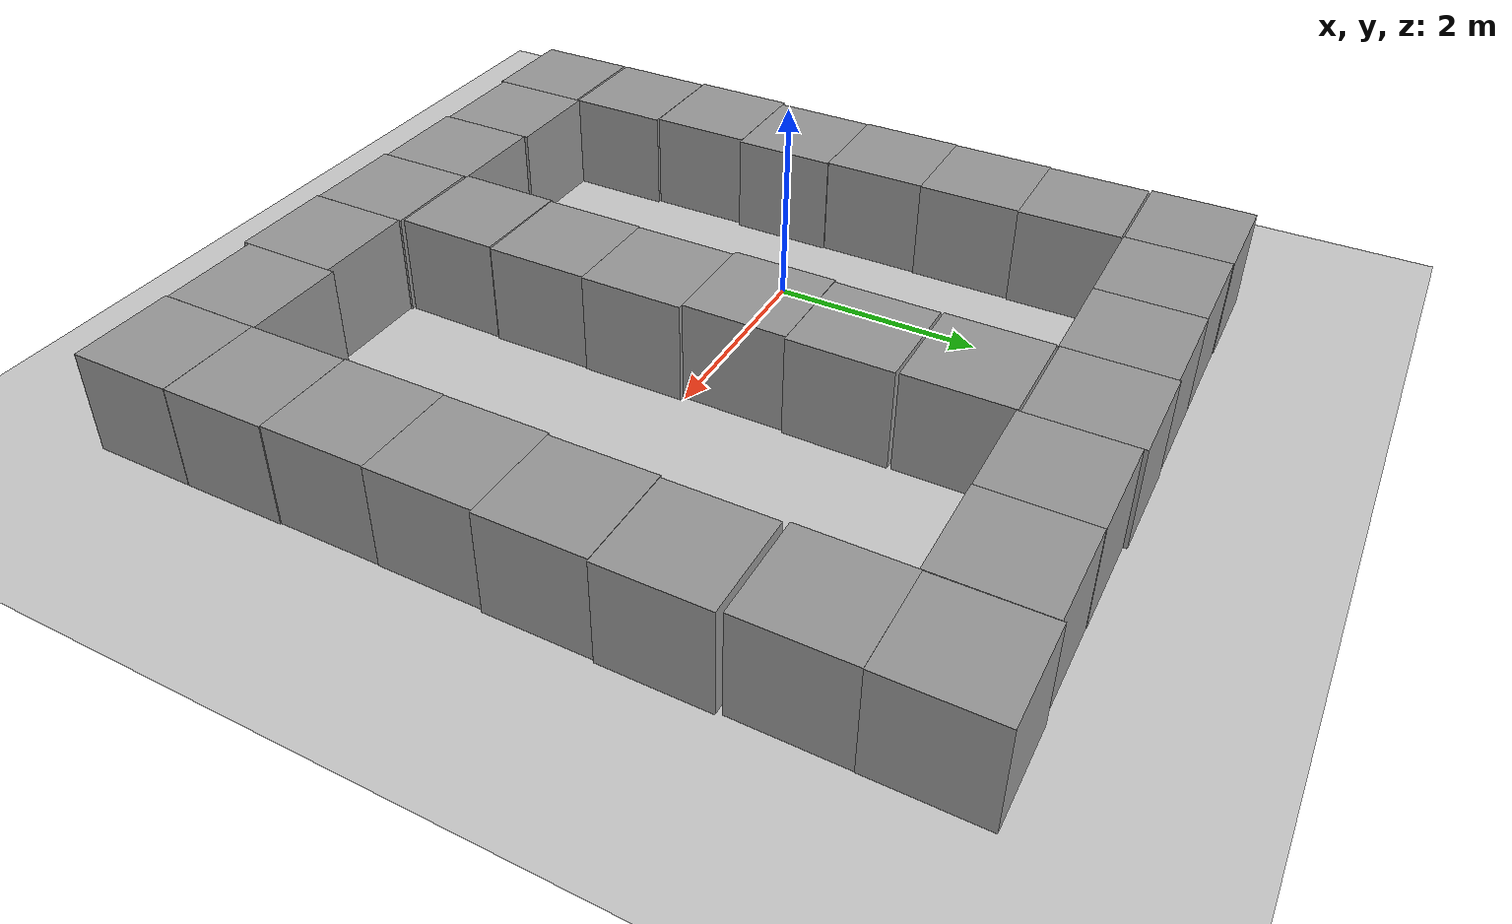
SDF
<sdf version="1.4">
 <world name="default">
  <light name="sun" type="directional">
   <pose>0 0 10 0 -0 0</pose>
   <diffuse>0.8 0.8 0.8 1</diffuse>
   <specular>0.2 0.2 0.2 1</specular>
   <attenuation>
    <range>1000</range>
    <constant>0.9</constant>
    <linear>0.01</linear>
    <quadratic>0.001</quadratic>
   </attenuation>
   <direction>-0.5 0.1 -0.9</direction>
  </light>
  <model name="ground_plane">
   <static>1</static>
   <link name="link">
    <collision name="collision">
     <geometry><plane><normal>0 0 1</normal><size>100 100</size></plane></geometry>
     <surface><friction><ode><mu>100</mu><mu2>50</mu2></ode></friction></surface>
    </collision>
    <visual name="visual">
     <cast_shadows>0</cast_shadows>
     <geometry><plane><normal>0 0 1</normal><size>100 100</size></plane></geometry>
     <material>
      <script><uri>file://media/materials/scripts/gazebo.material</uri><name>Gazebo/Grey</name></script>
     </material>
    </visual>
    <velocity_decay><linear>0</linear><angular>0</angular></velocity_decay>
   </link>
  </model>
  <physics type="ode">
   <max_step_size>0.001</max_step_size>
   <real_time_factor>1</real_time_factor>
   <real_time_update_rate>1000</real_time_update_rate>
   <gravity>0 0 -9.8</gravity>
  </physics>
  <scene><ambient>0.4 0.4 0.4 1</ambient><background>0.7 0.7 0.7 1</background><shadows>1</shadows></scene>
  <spherical_coordinates>
   <surface_model>EARTH_WGS84</surface_model>
   <latitude_deg>0</latitude_deg>
   <longitude_deg>0</longitude_deg>
   <elevation>0</elevation>
   <heading_deg>0</heading_deg>
  </spherical_coordinates>
  <model name="unit_box_1">
   <pose>-1.45911 -0.497832 0.5 0 -0 -0.000684</pose>
   <link name="link">
    <inertial>
     <mass>1</mass>
     <inertia><ixx>1</ixx><ixy>0</ixy><ixz>0</ixz><iyy>1</iyy><iyz>0</iyz><izz>1</izz></inertia>
    </inertial>
    <collision name="collision"><geometry><box><size>1 1 1</size></box></geometry></collision>
    <visual name="visual">
     <geometry><box><size>1 1 1</size></box></geometry>
     <material>
      <script><uri>file://media/materials/scripts/gazebo.material</uri><name>Gazebo/Grey</name></script>
     </material>
    </visual>
    <velocity_decay><linear>0</linear><angular>0</angular></velocity_decay>
   </link>
   <static>0</static>
  </model>
  <model name="unit_box_2">
   <pose>-1.47029 0.502232 0.5 -0 -0 -0.000612</pose>
   <link name="link">
    <inertial>
     <mass>1</mass>
     <inertia><ixx>1</ixx><ixy>0</ixy><ixz>0</ixz><iyy>1</iyy><iyz>0</iyz><izz>1</izz></inertia>
    </inertial>
    <collision name="collision"><geometry><box><size>1 1 1</size></box></geometry></collision>
    <visual name="visual">
     <geometry><box><size>1 1 1</size></box></geometry>
     <material>
      <script><uri>file://media/materials/scripts/gazebo.material</uri><name>Gazebo/Grey</name></script>
     </material>
    </visual>
    <velocity_decay><linear>0</linear><angular>0</angular></velocity_decay>
   </link>
   <static>0</static>
  </model>
  <model name="unit_box_3">
   <pose>-1.45782 1.50225 0.5 0 0 -0.000623</pose>
   <link name="link">
    <inertial>
     <mass>1</mass>
     <inertia><ixx>1</ixx><ixy>0</ixy><ixz>0</ixz><iyy>1</iyy><iyz>0</iyz><izz>1</izz></inertia>
    </inertial>
    <collision name="collision"><geometry><box><size>1 1 1</size></box></geometry></collision>
    <visual name="visual">
     <geometry><box><size>1 1 1</size></box></geometry>
     <material>
      <script><uri>file://media/materials/scripts/gazebo.material</uri><name>Gazebo/Grey</name></script>
     </material>
    </visual>
    <velocity_decay><linear>0</linear><angular>0</angular></velocity_decay>
   </link>
   <static>0</static>
  </model>
  <model name="unit_box_4">
   <pose>-1.44308 2.50225 0.5 0 -0 -0.000612</pose>
   <link name="link">
    <inertial>
     <mass>1</mass>
     <inertia><ixx>1</ixx><ixy>0</ixy><ixz>0</ixz><iyy>1</iyy><iyz>0</iyz><izz>1</izz></inertia>
    </inertial>
    <collision name="collision"><geometry><box><size>1 1 1</size></box></geometry></collision>
    <visual name="visual">
     <geometry><box><size>1 1 1</size></box></geometry>
     <material>
      <script><uri>file://media/materials/scripts/gazebo.material</uri><name>Gazebo/Grey</name></script>
     </material>
    </visual>
    <velocity_decay><linear>0</linear><angular>0</angular></velocity_decay>
   </link>
   <static>0</static>
  </model>
  <model name="unit_box_7">
   <pose>1.5402 -0.524001 0.5 0 -0 -0.000858</pose>
   <link name="link">
    <inertial>
     <mass>1</mass>
     <inertia><ixx>1</ixx><ixy>0</ixy><ixz>0</ixz><iyy>1</iyy><iyz>0</iyz><izz>1</izz></inertia>
    </inertial>
    <collision name="collision"><geometry><box><size>1 1 1</size></box></geometry></collision>
    <visual name="visual">
     <geometry><box><size>1 1 1</size></box></geometry>
     <material>
      <script><uri>file://media/materials/scripts/gazebo.material</uri><name>Gazebo/Grey</name></script>
     </material>
    </visual>
    <velocity_decay><linear>0</linear><angular>0</angular></velocity_decay>
   </link>
   <static>0</static>
  </model>
  <model name="unit_box_8">
   <pose>1.49506 0.476822 0.5 0 0 -0.000869</pose>
   <link name="link">
    <inertial>
     <mass>1</mass>
     <inertia><ixx>1</ixx><ixy>0</ixy><ixz>0</ixz><iyy>1</iyy><iyz>0</iyz><izz>1</izz></inertia>
    </inertial>
    <collision name="collision"><geometry><box><size>1 1 1</size></box></geometry></collision>
    <visual name="visual">
     <geometry><box><size>1 1 1</size></box></geometry>
     <material>
      <script><uri>file://media/materials/scripts/gazebo.material</uri><name>Gazebo/Grey</name></script>
     </material>
    </visual>
    <velocity_decay><linear>0</linear><angular>0</angular></velocity_decay>
   </link>
   <static>0</static>
  </model>
  <model name="unit_box_9">
   <pose>-1.48056 -2.50381 0.5 -0 -0 -0.007354</pose>
   <link name="link">
    <inertial>
     <mass>1</mass>
     <inertia><ixx>1</ixx><ixy>0</ixy><ixz>0</ixz><iyy>1</iyy><iyz>0</iyz><izz>1</izz></inertia>
    </inertial>
    <collision name="collision"><geometry><box><size>1 1 1</size></box></geometry></collision>
    <visual name="visual">
     <geometry><box><size>1 1 1</size></box></geometry>
     <material>
      <script><uri>file://media/materials/scripts/gazebo.material</uri><name>Gazebo/Grey</name></script>
     </material>
    </visual>
    <velocity_decay><linear>0</linear><angular>0</angular></velocity_decay>
   </link>
   <static>0</static>
  </model>
  <model name="unit_box_10">
   <pose>1.52665 -1.5242 0.5 -0 -0 -0.00124</pose>
   <link name="link">
    <inertial>
     <mass>1</mass>
     <inertia><ixx>1</ixx><ixy>0</ixy><ixz>0</ixz><iyy>1</iyy><iyz>0</iyz><izz>1</izz></inertia>
    </inertial>
    <collision name="collision"><geometry><box><size>1 1 1</size></box></geometry></collision>
    <visual name="visual">
     <geometry><box><size>1 1 1</size></box></geometry>
     <material>
      <script><uri>file://media/materials/scripts/gazebo.material</uri><name>Gazebo/Grey</name></script>
     </material>
    </visual>
    <velocity_decay><linear>0</linear><angular>0</angular></velocity_decay>
   </link>
   <static>0</static>
  </model>
  <model name="unit_box_11">
   <pose>1.50065 -2.5391 0.5 0 0 -0.013699</pose>
   <link name="link">
    <inertial>
     <mass>1</mass>
     <inertia><ixx>1</ixx><ixy>0</ixy><ixz>0</ixz><iyy>1</iyy><iyz>0</iyz><izz>1</izz></inertia>
    </inertial>
    <collision name="collision"><geometry><box><size>1 1 1</size></box></geometry></collision>
    <visual name="visual">
     <geometry><box><size>1 1 1</size></box></geometry>
     <material>
      <script><uri>file://media/materials/scripts/gazebo.material</uri><name>Gazebo/Grey</name></script>
     </material>
    </visual>
    <velocity_decay><linear>0</linear><angular>0</angular></velocity_decay>
   </link>
   <static>0</static>
  </model>
  <model name="unit_box_13">
   <pose>1.51829 -3.56454 0.5 -0 -0 -0.000339</pose>
   <link name="link">
    <inertial>
     <mass>1</mass>
     <inertia><ixx>1</ixx><ixy>0</ixy><ixz>0</ixz><iyy>1</iyy><iyz>0</iyz><izz>1</izz></inertia>
    </inertial>
    <collision name="collision"><geometry><box><size>1 1 1</size></box></geometry></collision>
    <visual name="visual">
     <geometry><box><size>1 1 1</size></box></geometry>
     <material>
      <script><uri>file://media/materials/scripts/gazebo.material</uri><name>Gazebo/Grey</name></script>
     </material>
    </visual>
    <velocity_decay><linear>0</linear><angular>0</angular></velocity_decay>
   </link>
   <static>0</static>
  </model>
  <model name="unit_box_14">
   <pose>0.51829 -3.53279 0.5 0 0 -0.000362</pose>
   <link name="link">
    <inertial>
     <mass>1</mass>
     <inertia><ixx>1</ixx><ixy>0</ixy><ixz>0</ixz><iyy>1</iyy><iyz>0</iyz><izz>1</izz></inertia>
    </inertial>
    <collision name="collision"><geometry><box><size>1 1 1</size></box></geometry></collision>
    <visual name="visual">
     <geometry><box><size>1 1 1</size></box></geometry>
     <material>
      <script><uri>file://media/materials/scripts/gazebo.material</uri><name>Gazebo/Grey</name></script>
     </material>
    </visual>
    <velocity_decay><linear>0</linear><angular>0</angular></velocity_decay>
   </link>
   <static>0</static>
  </model>
  <model name="unit_box_15">
   <pose>-0.481709 -3.50004 0.5 0 0 -0.000367</pose>
   <link name="link">
    <inertial>
     <mass>1</mass>
     <inertia><ixx>1</ixx><ixy>0</ixy><ixz>0</ixz><iyy>1</iyy><iyz>0</iyz><izz>1</izz></inertia>
    </inertial>
    <collision name="collision"><geometry><box><size>1 1 1</size></box></geometry></collision>
    <visual name="visual">
     <geometry><box><size>1 1 1</size></box></geometry>
     <material>
      <script><uri>file://media/materials/scripts/gazebo.material</uri><name>Gazebo/Grey</name></script>
     </material>
    </visual>
    <velocity_decay><linear>0</linear><angular>0</angular></velocity_decay>
   </link>
   <static>0</static>
  </model>
  <model name="unit_box_16">
   <pose>-1.48176 -3.52855 0.5 -0 -0 -0.000342</pose>
   <link name="link">
    <inertial>
     <mass>1</mass>
     <inertia><ixx>1</ixx><ixy>0</ixy><ixz>0</ixz><iyy>1</iyy><iyz>0</iyz><izz>1</izz></inertia>
    </inertial>
    <collision name="collision"><geometry><box><size>1 1 1</size></box></geometry></collision>
    <visual name="visual">
     <geometry><box><size>1 1 1</size></box></geometry>
     <material>
      <script><uri>file://media/materials/scripts/gazebo.material</uri><name>Gazebo/Grey</name></script>
     </material>
    </visual>
    <velocity_decay><linear>0</linear><angular>0</angular></velocity_decay>
   </link>
   <static>0</static>
  </model>
  <model name="unit_box_19">
   <pose>-1.47079 3.5227 0.5 0 0 -0.000385</pose>
   <link name="link">
    <inertial>
     <mass>1</mass>
     <inertia><ixx>1</ixx><ixy>0</ixy><ixz>0</ixz><iyy>1</iyy><iyz>0</iyz><izz>1</izz></inertia>
    </inertial>
    <collision name="collision"><geometry><box><size>1 1 1</size></box></geometry></collision>
    <visual name="visual">
     <geometry><box><size>1 1 1</size></box></geometry>
     <material>
      <script><uri>file://media/materials/scripts/gazebo.material</uri><name>Gazebo/Grey</name></script>
     </material>
    </visual>
    <velocity_decay><linear>0</linear><angular>0</angular></velocity_decay>
   </link>
   <static>0</static>
  </model>
  <model name="unit_box_20">
   <pose>-0.470771 3.51567 0.5 0 -0 -0.000422</pose>
   <link name="link">
    <inertial>
     <mass>1</mass>
     <inertia><ixx>1</ixx><ixy>0</ixy><ixz>0</ixz><iyy>1</iyy><iyz>0</iyz><izz>1</izz></inertia>
    </inertial>
    <collision name="collision"><geometry><box><size>1 1 1</size></box></geometry></collision>
    <visual name="visual">
     <geometry><box><size>1 1 1</size></box></geometry>
     <material>
      <script><uri>file://media/materials/scripts/gazebo.material</uri><name>Gazebo/Grey</name></script>
     </material>
    </visual>
    <velocity_decay><linear>0</linear><angular>0</angular></velocity_decay>
   </link>
   <static>0</static>
  </model>
  <model name="unit_box_21">
   <pose>0.529247 3.51633 0.5 0 -0 -0.000458</pose>
   <link name="link">
    <inertial>
     <mass>1</mass>
     <inertia><ixx>1</ixx><ixy>0</ixy><ixz>0</ixz><iyy>1</iyy><iyz>0</iyz><izz>1</izz></inertia>
    </inertial>
    <collision name="collision"><geometry><box><size>1 1 1</size></box></geometry></collision>
    <visual name="visual">
     <geometry><box><size>1 1 1</size></box></geometry>
     <material>
      <script><uri>file://media/materials/scripts/gazebo.material</uri><name>Gazebo/Grey</name></script>
     </material>
    </visual>
    <velocity_decay><linear>0</linear><angular>0</angular></velocity_decay>
   </link>
   <static>0</static>
  </model>
  <model name="unit_box_22">
   <pose>1.52926 3.52561 0.5 -0 -0 -0.000472</pose>
   <link name="link">
    <inertial>
     <mass>1</mass>
     <inertia><ixx>1</ixx><ixy>0</ixy><ixz>0</ixz><iyy>1</iyy><iyz>0</iyz><izz>1</izz></inertia>
    </inertial>
    <collision name="collision"><geometry><box><size>1 1 1</size></box></geometry></collision>
    <visual name="visual">
     <geometry><box><size>1 1 1</size></box></geometry>
     <material>
      <script><uri>file://media/materials/scripts/gazebo.material</uri><name>Gazebo/Grey</name></script>
     </material>
    </visual>
    <velocity_decay><linear>0</linear><angular>0</angular></velocity_decay>
   </link>
   <static>0</static>
  </model>
  <model name="unit_box_26">
   <pose>1.52093 2.50489 0.5 0 -0 0.000534</pose>
   <link name="link">
    <inertial>
     <mass>1</mass>
     <inertia><ixx>1</ixx><ixy>0</ixy><ixz>0</ixz><iyy>1</iyy><iyz>0</iyz><izz>1</izz></inertia>
    </inertial>
    <collision name="collision"><geometry><box><size>1 1 1</size></box></geometry></collision>
    <visual name="visual">
     <geometry><box><size>1 1 1</size></box></geometry>
     <material>
      <script><uri>file://media/materials/scripts/gazebo.material</uri><name>Gazebo/Grey</name></script>
     </material>
    </visual>
    <velocity_decay><linear>0</linear><angular>0</angular></velocity_decay>
   </link>
   <static>0</static>
  </model>
  <model name="unit_box_27">
   <pose>1.52758 1.47954 0.5 -0 -0 -0.00592</pose>
   <link name="link">
    <inertial>
     <mass>1</mass>
     <inertia><ixx>1</ixx><ixy>0</ixy><ixz>0</ixz><iyy>1</iyy><iyz>0</iyz><izz>1</izz></inertia>
    </inertial>
    <collision name="collision"><geometry><box><size>1 1 1</size></box></geometry></collision>
    <visual name="visual">
     <geometry><box><size>1 1 1</size></box></geometry>
     <material>
      <script><uri>file://media/materials/scripts/gazebo.material</uri><name>Gazebo/Grey</name></script>
     </material>
    </visual>
    <velocity_decay><linear>0</linear><angular>0</angular></velocity_decay>
   </link>
   <static>0</static>
  </model>
  <model name="unit_box_28">
   <pose>-1.50489 -1.49916 0.5 -0 -0 -0.00328</pose>
   <link name="link">
    <inertial>
     <mass>1</mass>
     <inertia><ixx>1</ixx><ixy>0</ixy><ixz>0</ixz><iyy>1</iyy><iyz>0</iyz><izz>1</izz></inertia>
    </inertial>
    <collision name="collision"><geometry><box><size>1 1 1</size></box></geometry></collision>
    <visual name="visual">
     <geometry><box><size>1 1 1</size></box></geometry>
     <material>
      <script><uri>file://media/materials/scripts/gazebo.material</uri><name>Gazebo/Grey</name></script>
     </material>
    </visual>
    <velocity_decay><linear>0</linear><angular>0</angular></velocity_decay>
   </link>
   <static>0</static>
  </model>
  <model name="unit_box_33">
   <pose>2.52934 3.48916 0.5 0 -0 -0.000645</pose>
   <link name="link">
    <inertial>
     <mass>1</mass>
     <inertia><ixx>1</ixx><ixy>0</ixy><ixz>0</ixz><iyy>1</iyy><iyz>0</iyz><izz>1</izz></inertia>
    </inertial>
    <collision name="collision"><geometry><box><size>1 1 1</size></box></geometry></collision>
    <visual name="visual">
     <geometry><box><size>1 1 1</size></box></geometry>
     <material>
      <script><uri>file://media/materials/scripts/gazebo.material</uri><name>Gazebo/Grey</name></script>
     </material>
    </visual>
    <velocity_decay><linear>0</linear><angular>0</angular></velocity_decay>
   </link>
   <static>0</static>
  </model>
  <model name="unit_box_34">
   <pose>3.53014 3.48385 0.5 0 0 -0.002254</pose>
   <link name="link">
    <inertial>
     <mass>1</mass>
     <inertia><ixx>1</ixx><ixy>0</ixy><ixz>0</ixz><iyy>1</iyy><iyz>0</iyz><izz>1</izz></inertia>
    </inertial>
    <collision name="collision"><geometry><box><size>1 1 1</size></box></geometry></collision>
    <visual name="visual">
     <geometry><box><size>1 1 1</size></box></geometry>
     <material>
      <script><uri>file://media/materials/scripts/gazebo.material</uri><name>Gazebo/Grey</name></script>
     </material>
    </visual>
    <velocity_decay><linear>0</linear><angular>0</angular></velocity_decay>
   </link>
   <static>0</static>
  </model>
  <model name="unit_box_35">
   <pose>4.53397 3.50485 0.5 0 -0 -0.000889</pose>
   <link name="link">
    <inertial>
     <mass>1</mass>
     <inertia><ixx>1</ixx><ixy>0</ixy><ixz>0</ixz><iyy>1</iyy><iyz>0</iyz><izz>1</izz></inertia>
    </inertial>
    <collision name="collision"><geometry><box><size>1 1 1</size></box></geometry></collision>
    <visual name="visual">
     <geometry><box><size>1 1 1</size></box></geometry>
     <material>
      <script><uri>file://media/materials/scripts/gazebo.material</uri><name>Gazebo/Grey</name></script>
     </material>
    </visual>
    <velocity_decay><linear>0</linear><angular>0</angular></velocity_decay>
   </link>
   <static>0</static>
  </model>
  <model name="unit_box_36">
   <pose>4.52809 2.50433 0.5 0 0 -0.00194</pose>
   <link name="link">
    <inertial>
     <mass>1</mass>
     <inertia><ixx>1</ixx><ixy>0</ixy><ixz>0</ixz><iyy>1</iyy><iyz>0</iyz><izz>1</izz></inertia>
    </inertial>
    <collision name="collision"><geometry><box><size>1 1 1</size></box></geometry></collision>
    <visual name="visual">
     <geometry><box><size>1 1 1</size></box></geometry>
     <material>
      <script><uri>file://media/materials/scripts/gazebo.material</uri><name>Gazebo/Grey</name></script>
     </material>
    </visual>
    <velocity_decay><linear>0</linear><angular>0</angular></velocity_decay>
   </link>
   <static>0</static>
  </model>
  <model name="unit_box_37">
   <pose>4.55127 1.45925 0.5 0 -0 0</pose>
   <link name="link">
    <inertial>
     <mass>1</mass>
     <inertia><ixx>1</ixx><ixy>0</ixy><ixz>0</ixz><iyy>1</iyy><iyz>0</iyz><izz>1</izz></inertia>
    </inertial>
    <collision name="collision"><geometry><box><size>1 1 1</size></box></geometry></collision>
    <visual name="visual">
     <geometry><box><size>1 1 1</size></box></geometry>
     <material>
      <script><uri>file://media/materials/scripts/gazebo.material</uri><name>Gazebo/Grey</name></script>
     </material>
    </visual>
    <velocity_decay><linear>0</linear><angular>0</angular></velocity_decay>
   </link>
   <static>0</static>
  </model>
  <model name="unit_box_38">
   <pose>4.53097 0.455261 0.5 0 -0 0.00101</pose>
   <link name="link">
    <inertial>
     <mass>1</mass>
     <inertia><ixx>1</ixx><ixy>0</ixy><ixz>0</ixz><iyy>1</iyy><iyz>0</iyz><izz>1</izz></inertia>
    </inertial>
    <collision name="collision"><geometry><box><size>1 1 1</size></box></geometry></collision>
    <visual name="visual">
     <geometry><box><size>1 1 1</size></box></geometry>
     <material>
      <script><uri>file://media/materials/scripts/gazebo.material</uri><name>Gazebo/Grey</name></script>
     </material>
    </visual>
    <velocity_decay><linear>0</linear><angular>0</angular></velocity_decay>
   </link>
   <static>0</static>
  </model>
  <model name="unit_box_39">
   <pose>4.50946 -0.544822 0.5 0 -0 0.001131</pose>
   <link name="link">
    <inertial>
     <mass>1</mass>
     <inertia><ixx>1</ixx><ixy>0</ixy><ixz>0</ixz><iyy>1</iyy><iyz>0</iyz><izz>1</izz></inertia>
    </inertial>
    <collision name="collision"><geometry><box><size>1 1 1</size></box></geometry></collision>
    <visual name="visual">
     <geometry><box><size>1 1 1</size></box></geometry>
     <material>
      <script><uri>file://media/materials/scripts/gazebo.material</uri><name>Gazebo/Grey</name></script>
     </material>
    </visual>
    <velocity_decay><linear>0</linear><angular>0</angular></velocity_decay>
   </link>
   <static>0</static>
  </model>
  <model name="unit_box_40">
   <pose>4.50411 -1.54523 0.5 0 -0 0.001935</pose>
   <link name="link">
    <inertial>
     <mass>1</mass>
     <inertia><ixx>1</ixx><ixy>0</ixy><ixz>0</ixz><iyy>1</iyy><iyz>0</iyz><izz>1</izz></inertia>
    </inertial>
    <collision name="collision"><geometry><box><size>1 1 1</size></box></geometry></collision>
    <visual name="visual">
     <geometry><box><size>1 1 1</size></box></geometry>
     <material>
      <script><uri>file://media/materials/scripts/gazebo.material</uri><name>Gazebo/Grey</name></script>
     </material>
    </visual>
    <velocity_decay><linear>0</linear><angular>0</angular></velocity_decay>
   </link>
   <static>0</static>
  </model>
  <model name="unit_box_41">
   <pose>4.51675 -2.54608 0.5 0 -0 0.003705</pose>
   <link name="link">
    <inertial>
     <mass>1</mass>
     <inertia><ixx>1</ixx><ixy>0</ixy><ixz>0</ixz><iyy>1</iyy><iyz>0</iyz><izz>1</izz></inertia>
    </inertial>
    <collision name="collision"><geometry><box><size>1 1 1</size></box></geometry></collision>
    <visual name="visual">
     <geometry><box><size>1 1 1</size></box></geometry>
     <material>
      <script><uri>file://media/materials/scripts/gazebo.material</uri><name>Gazebo/Grey</name></script>
     </material>
    </visual>
    <velocity_decay><linear>0</linear><angular>0</angular></velocity_decay>
   </link>
   <static>0</static>
  </model>
  <model name="unit_box_42">
   <pose>4.51838 -3.54803 0.5 0 -0 -0.000195</pose>
   <link name="link">
    <inertial>
     <mass>1</mass>
     <inertia><ixx>1</ixx><ixy>0</ixy><ixz>0</ixz><iyy>1</iyy><iyz>0</iyz><izz>1</izz></inertia>
    </inertial>
    <collision name="collision"><geometry><box><size>1 1 1</size></box></geometry></collision>
    <visual name="visual">
     <geometry><box><size>1 1 1</size></box></geometry>
     <material>
      <script><uri>file://media/materials/scripts/gazebo.material</uri><name>Gazebo/Grey</name></script>
     </material>
    </visual>
    <velocity_decay><linear>0</linear><angular>0</angular></velocity_decay>
   </link>
   <static>0</static>
  </model>
  <model name="unit_box_43">
   <pose>2.51832 -3.58662 0.5 0 -0 -0.000268</pose>
   <link name="link">
    <inertial>
     <mass>1</mass>
     <inertia><ixx>1</ixx><ixy>0</ixy><ixz>0</ixz><iyy>1</iyy><iyz>0</iyz><izz>1</izz></inertia>
    </inertial>
    <collision name="collision"><geometry><box><size>1 1 1</size></box></geometry></collision>
    <visual name="visual">
     <geometry><box><size>1 1 1</size></box></geometry>
     <material>
      <script><uri>file://media/materials/scripts/gazebo.material</uri><name>Gazebo/Grey</name></script>
     </material>
    </visual>
    <velocity_decay><linear>0</linear><angular>0</angular></velocity_decay>
   </link>
   <static>0</static>
  </model>
  <model name="unit_box_44">
   <pose>3.51835 -3.5255 0.5 0 -0 -0.000262</pose>
   <link name="link">
    <inertial>
     <mass>1</mass>
     <inertia><ixx>1</ixx><ixy>0</ixy><ixz>0</ixz><iyy>1</iyy><iyz>0</iyz><izz>1</izz></inertia>
    </inertial>
    <collision name="collision"><geometry><box><size>1 1 1</size></box></geometry></collision>
    <visual name="visual">
     <geometry><box><size>1 1 1</size></box></geometry>
     <material>
      <script><uri>file://media/materials/scripts/gazebo.material</uri><name>Gazebo/Grey</name></script>
     </material>
    </visual>
    <velocity_decay><linear>0</linear><angular>0</angular></velocity_decay>
   </link>
   <static>0</static>
  </model>
 </world>
</sdf>
